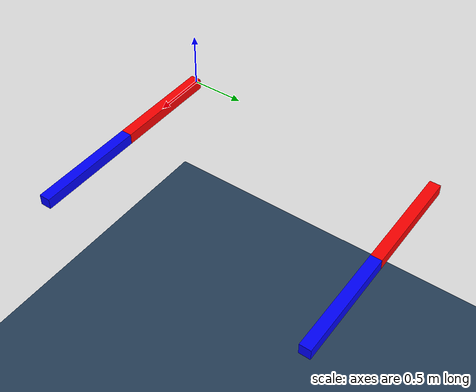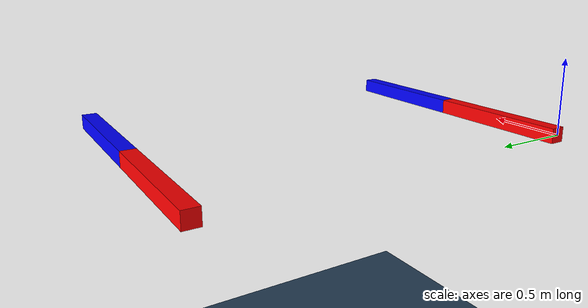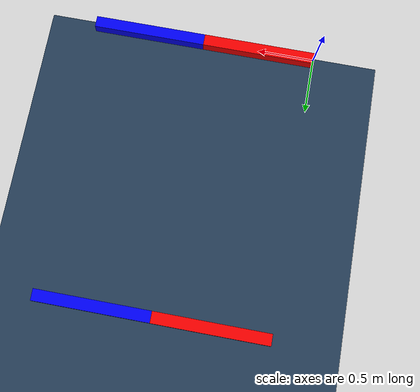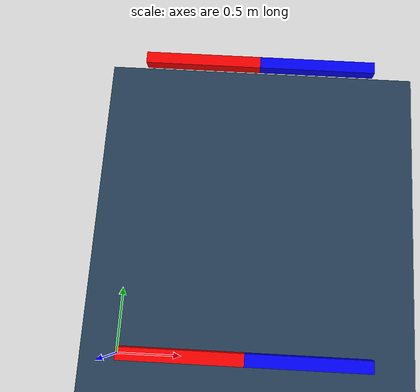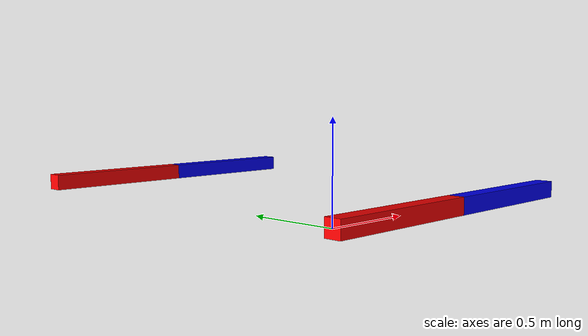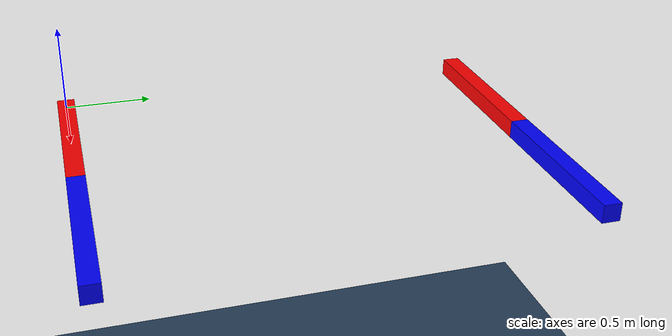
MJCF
<mujoco model="entryplug_hall_of_mirrors">
  <compiler angle="radian"/>
  <option timestep="0.002" integrator="implicitfast"/>

  <visual>
    <headlight diffuse="0.6 0.6 0.6" ambient="0.1 0.1 0.1" specular="0 0 0"/>
    <rgba haze="0.15 0.25 0.35 1"/>
    <global azimuth="120" elevation="-20"/>
  </visual>

  <asset>
    <texture type="skybox" builtin="gradient" rgb1="0.3 0.5 0.7" rgb2="0 0 0"
      width="512" height="3072"/>
    <texture type="2d" name="groundplane" builtin="checker" mark="edge"
      rgb1="0.2 0.3 0.4" rgb2="0.1 0.2 0.3" markrgb="0.8 0.8 0.8"
      width="300" height="300"/>
    <material name="groundplane" texture="groundplane" texuniform="true" texrepeat="5 5"/>
  </asset>

  <worldbody>
    <light name="fixture_lamp" pos="0 0 1.5" dir="0 0 -1" directional="true"
      castshadow="false"/>
    <geom name="floor" type="plane" pos="0 0 -2.5" size="0 0 0.01"
      contype="1" conaffinity="0" material="groundplane"/>
    <camera name="spectator_camera" fovy="52" mode="fixed"
      resolution="640 480" pos="3.6 1.25 3.0"
      xyaxes="0 1 0 -0.755689 0 0.654931"/>

    <body name="upperarm">
      <inertial pos="0.5 0 0" quat="0.5 0.5 0.5 0.5" mass="27"
        diaginertia="0.225 0.225 0.0225"/>
      <joint name="joint1" pos="0 0 0" axis="0 1 0" range="-3.14 3.14"
        actuatorfrcrange="-1000 1000" frictionloss="1" damping="2"/>
      <geom name="controlled_upperarm" size="0.5 0.05 0.05" pos="0.5 0 0"
        type="box" rgba="1 0 0 1" contype="0" conaffinity="0"/>
      <body name="forearm" pos="1 0 0" gravcomp="1">
        <inertial pos="0.5 0 0" quat="0.5 0.5 0.5 0.5" mass="27"
          diaginertia="0.225 0.225 0.0225"/>
        <joint name="joint2" pos="0 0 0" axis="0 1 0" range="-3.14 3.14"
          actuatorfrcrange="-1000 1000"/>
        <geom name="controlled_forearm" size="0.5 0.05 0.05" pos="0.5 0 0"
          type="box" rgba="0 0 1 1" contype="0" conaffinity="0"/>
        <camera name="camera" fovy="58" mode="fixed" resolution="640 480"
          pos="1 0 0.1"
          quat="-0.4999999999966268 -0.49999816339744824 -0.4999999999966268 -0.5000018366025517"/>
      </body>
    </body>

    <body name="mirror_upperarm" pos="0 2.5 0">
      <inertial pos="0.5 0 0" quat="0.5 0.5 0.5 0.5" mass="27"
        diaginertia="0.225 0.225 0.0225"/>
      <joint name="mirror_joint1" pos="0 0 0" axis="0 1 0" range="-3.14 3.14"
        actuatorfrcrange="-1000 1000" frictionloss="1" damping="2"/>
      <geom name="mirror_upperarm_visual" size="0.5 0.05 0.05" pos="0.5 0 0"
        type="box" rgba="1 0 0 1" contype="0" conaffinity="0"/>
      <body name="mirror_forearm" pos="1 0 0" gravcomp="1">
        <inertial pos="0.5 0 0" quat="0.5 0.5 0.5 0.5" mass="27"
          diaginertia="0.225 0.225 0.0225"/>
        <joint name="mirror_joint2" pos="0 0 0" axis="0 1 0" range="-3.14 3.14"
          actuatorfrcrange="-1000 1000"/>
        <geom name="mirror_forearm_visual" size="0.5 0.05 0.05" pos="0.5 0 0"
          type="box" rgba="0 0 1 1" contype="0" conaffinity="0"/>
        <camera name="mirror_camera" fovy="58" mode="fixed" resolution="640 480"
          pos="1 0 0.1"
          quat="-0.4999999999966268 -0.49999816339744824 -0.4999999999966268 -0.5000018366025517"/>
      </body>
    </body>
  </worldbody>

  <actuator>
    <position name="joint1" joint="joint1" kp="25000" dampratio="1"
      ctrlrange="-3.14159 3.14159"/>
    <position name="joint2" joint="joint2" kp="25000" dampratio="1"
      ctrlrange="-3.14159 3.14159"/>
    <position name="mirror_joint1" joint="mirror_joint1" kp="25000" dampratio="1"
      ctrlrange="-3.14159 3.14159"/>
    <position name="mirror_joint2" joint="mirror_joint2" kp="25000" dampratio="1"
      ctrlrange="-3.14159 3.14159"/>
  </actuator>
</mujoco>
